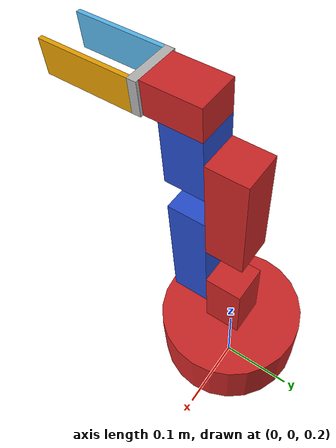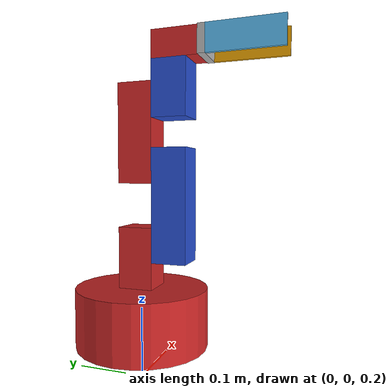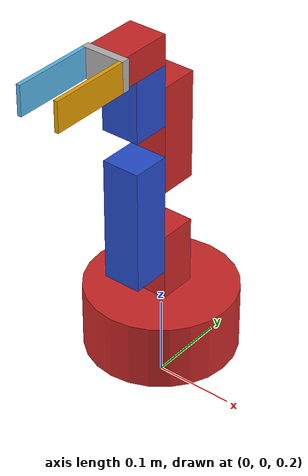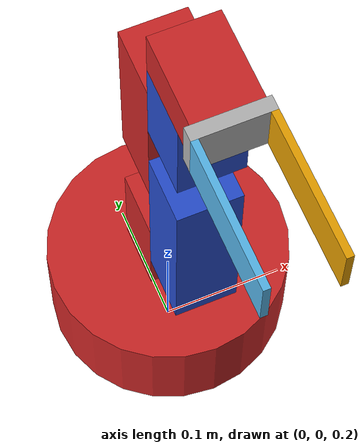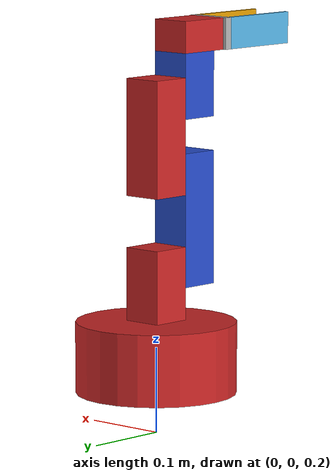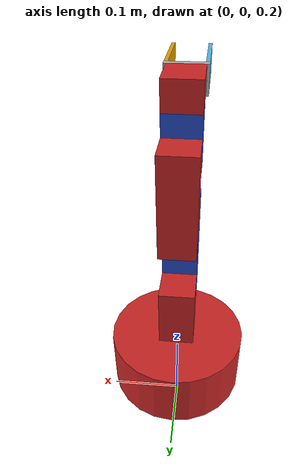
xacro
<?xml version="1.0"?>

<robot name="simple_robot" xmlns:xacro="https://www.ros.org/wiki/xacro">

<!-- include model parameters -->
<xacro:include filename="$(find demo_control)/model/parameters.xacro" />
<xacro:include filename="$(find demo_control)/model/gazebo.xacro" />

<!-- defining links and joints -->

<!-- World link -->
<link name="world"> </link>

  <!-- ================= BASE ================= -->
  <link name="arm_base_link">
    <visual>
      <geometry>
        <cylinder radius="${93.52/1000}" length="${83.36/1000}"/>
      </geometry>
    </visual>
    <collision>
      <geometry>
        <cylinder radius="${93.52/1000}" length="${83.36/1000}"/>
      </geometry>
    </collision>
    <xacro:inertia_body/>
  </link>

  <!-- FIXED TO WORLD -->
  <joint name="world_joint" type="fixed">
    <parent link="world"/>
    <child link="arm_base_link"/>
    <origin xyz="0 0 ${(290/1000)}" rpy="0 0 0"/>
  </joint>

  <!-- ================= LINK 1 ================= -->
  <link name="link_1">
    <visual>
      <geometry>
        <box size="${48/1000} ${48/1000} ${85.31/1000}"/>
      </geometry>
      <origin xyz="0 0 ${(85.31/1000)/2}"/>
    </visual>
    <collision>
      <geometry>
        <box size="${48/1000} ${48/1000} ${85.31/1000}"/>
      </geometry>
      <origin xyz="0 0 ${(85.31/1000)/2}"/>
    </collision>
    <xacro:inertia_body/>
  </link>

  <joint name="joint_1" type="revolute">
    <parent link="arm_base_link"/>
    <child link="link_1"/>
    <origin xyz="0 0 ${(85.31/1000)/2}" rpy="0 0 0"/>
    <axis xyz="0 0 1"/>
    <limit effort="5000" velocity="10" lower="-1.571" upper="1.571"/>
  </joint>

  <!-- ================= LINK 2 ================= -->
  <link name="link_2">
    <visual>
      <geometry>
        <box size="${48/1000} ${48/1000} ${156.17/1000}"/>
      </geometry>
      <origin xyz="0 ${-24/1000} ${54.083/1000}"/>
    </visual>
    <collision>
      <geometry>
        <box size="${48/1000} ${48/1000} ${156.17/1000}"/>
      </geometry>
      <origin xyz="0 ${-24/1000} ${54.083/1000}"/>
    </collision>
    <xacro:inertia_body/>
  </link>

  <joint name="joint_2" type="revolute">
    <parent link="link_1"/>
    <child link="link_2"/>
    <origin xyz="0 ${-24/1000} ${61.311/1000}" rpy="0 0 0"/>
    <axis xyz="0 1 0"/>
    <limit effort="5000" velocity="10" lower="-1.571" upper="1.571"/>
  </joint>

  <!-- ================= LINK 3 (VERTICAL) ================= -->
  <link name="link_3">
    <visual>
      <geometry>
        <box size="${48/1000} ${48/1000} ${135.8/1000}"/>
      </geometry>
      <origin xyz="0 ${24/1000} ${43.902/1000}"/>
    </visual>
    <collision>
      <geometry>
        <box size="${48/1000} ${48/1000} ${135.8/1000}"/>
      </geometry>
      <origin xyz="0 ${24/1000} ${43.902/1000}"/>
    </collision>
    <xacro:inertia_body/>
  </link>

  <joint name="joint_3" type="revolute">
    <parent link="link_2"/>
    <child link="link_3"/>
    <origin xyz="0 0 ${108.165/1000}" rpy="0 0 0"/>
    <axis xyz="0 1 0"/>
    <limit effort="5000" velocity="10" lower="-1.571" upper="1.571"/>
  </joint>

  <!-- ================= LINK 4 ================= -->
  <link name="link_4">
    <visual>
      <geometry>
        <box size="${48/1000} ${48/1000} ${76/1000}"/>
      </geometry>
      <origin xyz="0 ${-24/1000} ${14/1000}"/>
    </visual>
    <collision>
      <geometry>
        <box size="${48/1000} ${48/1000} ${76/1000}"/>
      </geometry>
      <origin xyz="0 ${-24/1000} ${14/1000}"/>
    </collision>
    <xacro:inertia_body/>
  </link>

  <joint name="joint_4" type="revolute">
    <parent link="link_3"/>
    <child link="link_4"/>
    <origin xyz="0 0 ${87.603/1000}" rpy="0 0 0"/>
    <axis xyz="0 1 0"/>
    <limit effort="5000" velocity="10" lower="-1.571" upper="1.571"/>
  </joint>

  <!-- ================= LINK 5 ================= -->
  <link name="link_5">
    <visual>
      <geometry>
        <box size="${48/1000} ${64/1000} ${37/1000}"/>
      </geometry>
      <origin xyz="0 ${-8/1000} ${(18.5/1000)}"/>
    </visual>
    <collision>
      <geometry>
        <box size="${48/1000} ${64/1000} ${37/1000}"/>
      </geometry>
      <origin xyz="0 ${-8/1000} ${(18.5/1000)}"/>
    </collision>
    <xacro:inertia_body/>
  </link>

  <joint name="joint_5" type="revolute">
    <parent link="link_4"/>
    <child link="link_5"/>
    <origin xyz="0 ${-24/1000} ${52/1000}" rpy="0 0 0"/>
    <axis xyz="0 0 1"/>
    <limit effort="5000" velocity="10" lower="-3.14" upper="3.14"/>
  </joint>

<!-- ================= Gripper base (END EFFECTOR) ================= -->
  <link name="gripper_base">
    <visual>
      <geometry>
        <box size="${55/1000} ${10/1000} ${37/1000}"/>
      </geometry>
      <origin xyz="0 ${-5/1000} 0"/>
    </visual>
    <collision>
      <geometry>
        <box size="${55/1000} ${10/1000} ${37/1000}"/>
      </geometry>
      <origin xyz="0 ${-5/1000} 0"/>
    </collision>
    <xacro:inertia_body/>
  </link>

  <joint name="joint_6" type="revolute">
    <parent link="link_5"/>
    <child link="gripper_base"/>
    <origin xyz="0 ${-40/1000} ${18.5/1000}" rpy="0 0 0"/>
    <axis xyz="0 1 0"/>
    <limit effort="5000" velocity="10" lower="-3.14" upper="3.14"/>
  </joint>

<!-- ================= Left finger (END EFFECTOR) ================= -->
  <link name="left_finger">
    <visual>
      <geometry>
        <box size="${5/1000} ${100/1000} ${37/1000}"/>
      </geometry>
      <origin xyz="0 ${-50/1000} 0"/>
    </visual>
    <collision>
      <geometry>
        <box size="${5/1000} ${100/1000} ${37/1000}"/>
      </geometry>
      <origin xyz="0 ${-50/1000} 0"/>
    </collision>
    <xacro:inertia_body/>
  </link>

  <joint name="left_finger_joint" type="prismatic">
    <parent link="gripper_base"/>
    <child link="left_finger"/>
    <origin xyz="${25/1000} ${-10/1000} 0" rpy="0 0 0"/>
    <axis xyz="1 0 0"/>
    <limit effort="5000" velocity="10" lower="-0.0125" upper="0.0"/>
  </joint>

<!-- ================= Right finger (END EFFECTOR) ================= -->
<link name="right_finger">
  <visual>
    <geometry>
      <box size="${5/1000} ${100/1000} ${37/1000}"/>
    </geometry>
    <!-- Mirror of left finger -->
    <origin xyz="0 ${-50/1000} 0"/>
  </visual>
  <collision>
    <geometry>
      <box size="${5/1000} ${100/1000} ${37/1000}"/>
    </geometry>
    <origin xyz="0 ${-50/1000} 0"/>
  </collision>
  <xacro:inertia_body/>
</link>

<joint name="right_finger_joint" type="prismatic">
  <parent link="gripper_base"/>
  <child link="right_finger"/>

  <!-- Mirror position -->
  <origin xyz="${-25/1000} ${-10/1000} 0" rpy="0 0 0"/>

  <!-- Same axis direction -->
  <axis xyz="1 0 0"/>

  <limit effort="5000" velocity="10" lower="0.05" upper="0.0"/>
</joint>

<!-- ROS2 control plugins -->

<!-- ROS2 control plugins -->
<ros2_control name="RobotController" type="system">

  <hardware>
    <plugin>gz_ros2_control/GazeboSimSystem</plugin>
  </hardware>

  <!-- Arm joints -->
  <joint name="joint_1">
    <command_interface name="position">
      <param name="min">-2.87979</param>
      <param name="max">2.87979</param>
    </command_interface>
  </joint>

  <joint name="joint_2">
    <command_interface name="position">
      <param name="min">-2.87979</param>
      <param name="max">2.87979</param>
    </command_interface>
  </joint>

  <joint name="joint_3">
    <command_interface name="position">
      <param name="min">-2.87979</param>
      <param name="max">2.87979</param>
    </command_interface>
  </joint>

  <joint name="joint_4">
    <command_interface name="position">
      <param name="min">-2.87979</param>
      <param name="max">2.87979</param>
    </command_interface>
  </joint>

  <joint name="joint_5">
    <command_interface name="position">
      <param name="min">-2.87979</param>
      <param name="max">2.87979</param>
    </command_interface>
  </joint>

  <!-- Gripper base -->
  <joint name="joint_6">
    <command_interface name="position">
      <param name="min">-3.14</param>
      <param name="max">3.14</param>
    </command_interface>
  </joint>

    <!-- Gripper joints -->
    <joint name="left_finger_joint">
    <command_interface name="position">
        <param name="min">-0.0125</param>
        <param name="max">0.0</param>
    </command_interface>
    </joint>

    <joint name="right_finger_joint">
    <command_interface name="position">
        <param name="min">-0.0125</param>
        <param name="max">0.0</param>
    </command_interface>
    </joint>

</ros2_control>

</robot>

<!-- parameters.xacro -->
<robot xmlns:xacro="https://www.ros.org/wiki/xacro">

<!-- Link Dimensions -->

<xacro:property name="a" value="0.1" />
<xacro:property name="b" value="0.1" />
<xacro:property name="c" value="0.8" />

<!-- COM w.r.t link frame -->
<xacro:property name="s" value="${c/2}" />

<!-- First joint displacement w.r.t Z-axis -->
<xacro:property name="q" value="${c-c/4}" />

<!-- Material density -->
<xacro:property name="d" value="${2710.0}" />#

<!-- Mass -->
<xacro:property name="m" value="${a*b*c*d}" />

<!-- Moments of inertia -->
<xacro:property name="Ix_body" value="${(1/12)*m*(b*b+c*c)}" />
<xacro:property name="Iy_body" value="${(1/12)*m*(a*a+b*b)}" />
<xacro:property name="Iz_body" value="${(1/12)*m*(a*a+c*c)}" />

<!-- Dimensions (meters) -->
<xacro:property name="link_w" value="0.048"/>   <!-- 48 mm -->
<xacro:property name="link_h" value="0.048"/>

<!-- Base -->
<xacro:property name="base_radius" value="0.04676"/>
<xacro:property name="base_height" value="0.08336"/>

<!-- Vertical spacings -->
<xacro:property name="z1" value="0.14467"/>
<xacro:property name="z2" value="0.10817"/>
<xacro:property name="z3" value="0.0878"/>
<xacro:property name="z4" value="0.0705"/>
<xacro:property name="z5" value="0.037"/>

<!-- Link lengths -->
<xacro:property name="L1" value="0.08531"/>
<xacro:property name="L2" value="0.1358"/>
<xacro:property name="L3" value="0.076"/>
<xacro:property name="L4" value="0.024"/>
<xacro:property name="L5" value="0.064"/>

<!-- Inertial sections -->
<xacro:macro name="inertia_body">
    <inertial>
    <origin rpy="0 0 0" xyz="0 0 ${s}"/>
    <mass value="${m}"/>
    <inertia ixx="${Ix_body}" ixy="0.0" ixz="0.0" iyy="${Iy_body}" iyz="0" izz="${Iz_body}"/>
    </inertial>
</xacro:macro>

<!-- Colours -->
<material name="blue">
    <color rgba="0 0 1 1"/>
</material>

<material name="red">
    <color rgba="1 0 0 1"/>
</material>

</robot>
